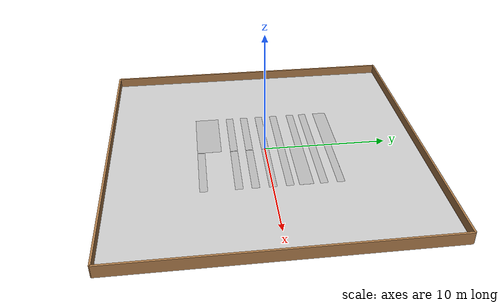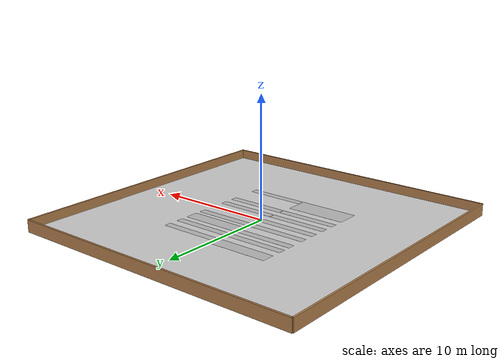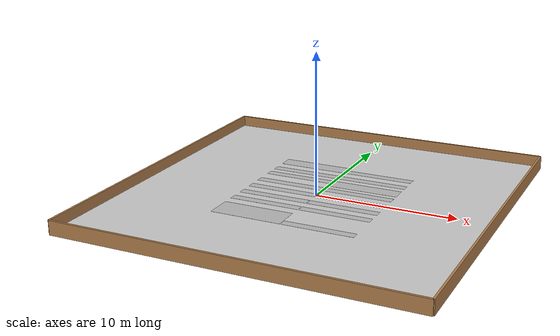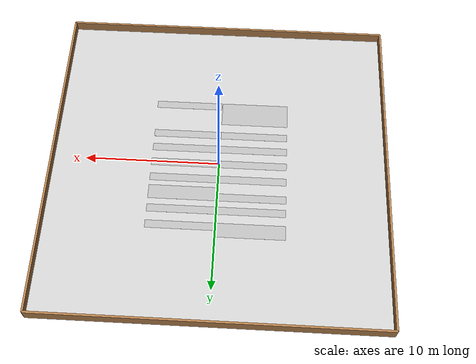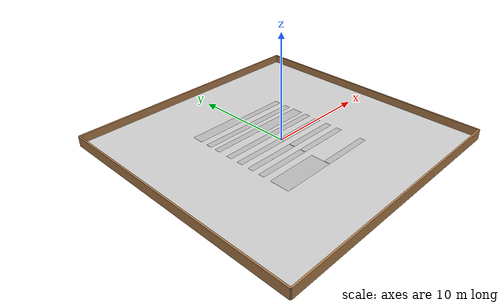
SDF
<sdf version='1.6'>
  <world name='default'>

    <gui fullscreen='0'>
      <camera name='user_camera'>
        <pose frame=''>0.0 0.0 15.7465 0.0 1.57 0.0</pose>
        <view_controller>orbit</view_controller>
        <projection_type>perspective</projection_type>
      </camera>
    </gui>

    <include>
      <uri>model://sun</uri>
    </include>
    <include>
      <uri>model://cmp9767m_ground_3</uri>
    </include>
    <include>
      <uri>model://cmp9767m_enclosure</uri>
    </include>
    <include>
      <uri>model://cmp9767m_crop_2</uri>
      <pose>2.55 0 0 0 0 0</pose>
      <name>row_0a</name>
    </include>
    <include>
      <uri>model://cmp9767m_crop_2</uri>
      <pose>-2.55 0 0 0 0 0</pose>
      <name>row_0b</name>
    </include>
    <include>
      <uri>model://cmp9767m_crop_2</uri>
      <pose>2.55 1.3 0 0 0 3.14159</pose>
      <name>row_1a</name>
    </include>
    <include>
      <uri>model://cmp9767m_crop_2</uri>
      <pose>-2.55 1.3 0 0 0 3.14159</pose>
      <name>row_1b</name>
    </include>
    <include>
      <uri>model://cmp9767m_bend_1</uri>
      <pose>2.55 2.55 0 0 0 0</pose>
      <name>row_2a</name>
    </include>
    <include>
      <uri>model://cmp9767m_crop_2</uri>
      <pose>-2.55 2.80 0 0 0 0</pose>
      <name>row_2b</name>
    </include>
    <include>
      <uri>model://cmp9767m_crop_2</uri>
      <pose>2.55 3.9 0 0 0 3.14159</pose>
      <name>row_3a</name>
    </include>
    <include>
      <uri>model://cmp9767m_crop_2</uri>
      <pose>-2.55 3.9 0 0 0 0</pose>
      <name>row_3b</name>
    </include>
    <include>
      <uri>model://cmp9767m_crop_2</uri>
      <pose>2.55 5.2 0 0 0 0</pose>
      <name>row_4a</name>
    </include>
    <include>
      <uri>model://cmp9767m_bend_1</uri>
      <pose>-2.55 5.45 0 0 0 3.14159</pose>
      <name>row_4b</name>
    </include>
    <include>
      <uri>model://cmp9767m_crop_2</uri>
      <pose>2.55 -1.3 0 0 0 3.14159</pose>
      <name>row_01a</name>
    </include>
    <include>
      <uri>model://cmp9767m_crop_2</uri>
      <pose>-2.55 -1.3 0 0 0 3.14159</pose>
      <name>row_01b</name>
    </include>
    <include>
      <uri>model://cmp9767m_crop_2</uri>
      <pose>2.55 -2.55 0 0 0 0</pose>
      <name>row_02a</name>
    </include>
    <include>
      <uri>model://cmp9767m_crop_2</uri>
      <pose>-2.55 -2.55 0 0 0 0</pose>
      <name>row_02b</name>
    </include>
    <include>
      <uri>model://cmp9767m_crop_2</uri>
      <pose>2.55 -5.2 0 0 0 0</pose>
      <name>row_04a</name>
    </include>
    <include>
      <uri>model://cmp9767m_bend_2</uri>
      <pose>-2.55 -4.53 0 0 0 3.14159</pose>
      <name>row_04b</name>
    </include>
    <include>
      <uri>model://cmp9767m_enclosure</uri>
    </include>
    <physics type="ode">
        <real_time_update_rate>200</real_time_update_rate>
        <real_time_factor>1</real_time_factor>
        <max_step_size>0.005</max_step_size>
    </physics>
    <gravity>0 0 -9.8</gravity>
  </world>
</sdf>

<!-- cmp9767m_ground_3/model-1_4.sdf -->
<sdf version="1.4">
<model name="cmp9767m_ground_3">
  <static>true</static>
    <link name="dirt">
      <collision name="collision">
        <geometry>
          <plane>
            <normal>0 0 1</normal>
            <size>25 25</size>
          </plane>
        </geometry>
        <surface>
          <friction>
            <ode>
              <mu>Inf</mu>
              <mu2>Inf</mu2>
            </ode>
          </friction>
        </surface>
      </collision>
      <visual name="visual">
        <cast_shadows>false</cast_shadows>
        <geometry>
          <plane>
            <normal>0 0 1</normal>
            <size>25 25</size>
          </plane>
        </geometry>
        <material>
          <script>
            <uri>model://cmp9767m_ground_3/materials/scripts</uri>
            <uri>model://cmp9767m_ground_3/materials/textures</uri>
            <name>cmp9767m_ground_3/dirt</name>
          </script>
        </material>
      </visual>
    </link>
  </model>
</sdf>

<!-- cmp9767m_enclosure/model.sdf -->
<sdf version='1.6'>
  <model name='cmp9767m_enclosure'>
    <link name='Wall_0'>
      <pose frame=''>0 12.5 0 0 -0 0</pose>
      <self_collide>0</self_collide>
      <enable_wind>0</enable_wind>
      <kinematic>0</kinematic>
      <gravity>1</gravity>
      <inertial>
        <mass>1</mass>
        <pose frame=''>0 0 0 0 -0 0</pose>
        <inertia>
          <ixx>1</ixx>
          <ixy>0</ixy>
          <ixz>0</ixz>
          <iyy>1</iyy>
          <iyz>0</iyz>
          <izz>1</izz>
        </inertia>
      </inertial>
      <visual name='Wall_0_Visual'>
        <pose frame=''>0 0 0.25 0 -0 0</pose>
        <geometry>
          <box>
            <size>25.0 0.15 1.0</size>
          </box>
        </geometry>
        <material>
          <script>
            <uri>file://media/materials/scripts/gazebo.material</uri>
            <name>Gazebo/Wood</name>
          </script>
          <ambient>1 1 1 1</ambient>
          <shader type='pixel'>
            <normal_map>__default__</normal_map>
          </shader>
          <diffuse>1 1 1 1</diffuse>
          <specular>0.2 0.2 0.2 1</specular>
          <emissive>0 0 0 1</emissive>
        </material>
        <meta>
          <layer>0</layer>
        </meta>
        <transparency>0</transparency>
        <cast_shadows>1</cast_shadows>
      </visual>
      <collision name='Wall_0_Collision'>
        <laser_retro>0</laser_retro>
        <max_contacts>10</max_contacts>
        <pose frame=''>0 0 0.25 0 -0 0</pose>
        <geometry>
          <box>
            <size>25.0 0.15 1.0</size>
          </box>
        </geometry>
        <surface>
          <friction>
            <ode>
              <mu>1</mu>
              <mu2>1</mu2>
              <fdir1>0 0 0</fdir1>
              <slip1>0</slip1>
              <slip2>0</slip2>
            </ode>
            <torsional>
              <coefficient>1</coefficient>
              <patch_radius>0</patch_radius>
              <surface_radius>0</surface_radius>
              <use_patch_radius>1</use_patch_radius>
              <ode>
                <slip>0</slip>
              </ode>
            </torsional>
          </friction>
          <bounce>
            <restitution_coefficient>0</restitution_coefficient>
            <threshold>1e+06</threshold>
          </bounce>
          <contact>
            <collide_without_contact>0</collide_without_contact>
            <collide_without_contact_bitmask>1</collide_without_contact_bitmask>
            <collide_bitmask>1</collide_bitmask>
            <ode>
              <soft_cfm>0</soft_cfm>
              <soft_erp>0.2</soft_erp>
              <kp>1e+13</kp>
              <kd>1</kd>
              <max_vel>0.01</max_vel>
              <min_depth>0</min_depth>
            </ode>
            <bullet>
              <split_impulse>1</split_impulse>
              <split_impulse_penetration_threshold>-0.01</split_impulse_penetration_threshold>
              <soft_cfm>0</soft_cfm>
              <soft_erp>0.2</soft_erp>
              <kp>1e+13</kp>
              <kd>1</kd>
            </bullet>
          </contact>
        </surface>
      </collision>
    </link>
    <link name='Wall_1'>
      <pose frame=''>0 -12.5 0 0 -0 0</pose>
      <self_collide>0</self_collide>
      <enable_wind>0</enable_wind>
      <kinematic>0</kinematic>
      <gravity>1</gravity>
      <inertial>
        <mass>1</mass>
        <pose frame=''>0 0 0 0 -0 0</pose>
        <inertia>
          <ixx>1</ixx>
          <ixy>0</ixy>
          <ixz>0</ixz>
          <iyy>1</iyy>
          <iyz>0</iyz>
          <izz>1</izz>
        </inertia>
      </inertial>
      <visual name='Wall_1_Visual'>
        <pose frame=''>0 0 0.25 0 -0 0</pose>
        <geometry>
          <box>
            <size>25.0 0.15 1.0</size>
          </box>
        </geometry>
        <material>
          <script>
            <uri>file://media/materials/scripts/gazebo.material</uri>
            <name>Gazebo/Wood</name>
          </script>
          <ambient>1 1 1 1</ambient>
          <shader type='pixel'>
            <normal_map>__default__</normal_map>
          </shader>
          <diffuse>1 1 1 1</diffuse>
          <specular>0.2 0.2 0.2 1</specular>
          <emissive>0 0 0 1</emissive>
        </material>
        <meta>
          <layer>0</layer>
        </meta>
        <transparency>0</transparency>
        <cast_shadows>1</cast_shadows>
      </visual>
      <collision name='Wall_1_Collision'>
        <laser_retro>0</laser_retro>
        <max_contacts>10</max_contacts>
        <pose frame=''>0 0 0.25 0 -0 0</pose>
        <geometry>
          <box>
            <size>25.0 0.15 1.0</size>
          </box>
        </geometry>
        <surface>
          <friction>
            <ode>
              <mu>1</mu>
              <mu2>1</mu2>
              <fdir1>0 0 0</fdir1>
              <slip1>0</slip1>
              <slip2>0</slip2>
            </ode>
            <torsional>
              <coefficient>1</coefficient>
              <patch_radius>0</patch_radius>
              <surface_radius>0</surface_radius>
              <use_patch_radius>1</use_patch_radius>
              <ode>
                <slip>0</slip>
              </ode>
            </torsional>
          </friction>
          <bounce>
            <restitution_coefficient>0</restitution_coefficient>
            <threshold>1e+06</threshold>
          </bounce>
          <contact>
            <collide_without_contact>0</collide_without_contact>
            <collide_without_contact_bitmask>1</collide_without_contact_bitmask>
            <collide_bitmask>1</collide_bitmask>
            <ode>
              <soft_cfm>0</soft_cfm>
              <soft_erp>0.2</soft_erp>
              <kp>1e+13</kp>
              <kd>1</kd>
              <max_vel>0.01</max_vel>
              <min_depth>0</min_depth>
            </ode>
            <bullet>
              <split_impulse>1</split_impulse>
              <split_impulse_penetration_threshold>-0.01</split_impulse_penetration_threshold>
              <soft_cfm>0</soft_cfm>
              <soft_erp>0.2</soft_erp>
              <kp>1e+13</kp>
              <kd>1</kd>
            </bullet>
          </contact>
        </surface>
      </collision>
    </link>
    <link name='Wall_2'>
      <pose frame=''>-12.5 0 0 0 -0 1.57</pose>
      <self_collide>0</self_collide>
      <enable_wind>0</enable_wind>
      <kinematic>0</kinematic>
      <gravity>1</gravity>
      <inertial>
        <mass>1</mass>
        <pose frame=''>0 0 0 0 -0 0</pose>
        <inertia>
          <ixx>1</ixx>
          <ixy>0</ixy>
          <ixz>0</ixz>
          <iyy>1</iyy>
          <iyz>0</iyz>
          <izz>1</izz>
        </inertia>
      </inertial>
      <visual name='Wall_2_Visual'>
        <pose frame=''>0 0 0.25 0 -0 0</pose>
        <geometry>
          <box>
            <size>25.0 0.15 1.0</size>
          </box>
        </geometry>
        <material>
          <script>
            <uri>file://media/materials/scripts/gazebo.material</uri>
            <name>Gazebo/Wood</name>
          </script>
          <ambient>1 1 1 1</ambient>
          <shader type='pixel'>
            <normal_map>__default__</normal_map>
          </shader>
          <diffuse>1 1 1 1</diffuse>
          <specular>0.2 0.2 0.2 1</specular>
          <emissive>0 0 0 1</emissive>
        </material>
        <meta>
          <layer>0</layer>
        </meta>
        <transparency>0</transparency>
        <cast_shadows>1</cast_shadows>
      </visual>
      <collision name='Wall_2_Collision'>
        <laser_retro>0</laser_retro>
        <max_contacts>10</max_contacts>
        <pose frame=''>0 0 0.25 0 -0 0</pose>
        <geometry>
          <box>
            <size>25.0 0.15 1.0</size>
          </box>
        </geometry>
        <surface>
          <friction>
            <ode>
              <mu>1</mu>
              <mu2>1</mu2>
              <fdir1>0 0 0</fdir1>
              <slip1>0</slip1>
              <slip2>0</slip2>
            </ode>
            <torsional>
              <coefficient>1</coefficient>
              <patch_radius>0</patch_radius>
              <surface_radius>0</surface_radius>
              <use_patch_radius>1</use_patch_radius>
              <ode>
                <slip>0</slip>
              </ode>
            </torsional>
          </friction>
          <bounce>
            <restitution_coefficient>0</restitution_coefficient>
            <threshold>1e+06</threshold>
          </bounce>
          <contact>
            <collide_without_contact>0</collide_without_contact>
            <collide_without_contact_bitmask>1</collide_without_contact_bitmask>
            <collide_bitmask>1</collide_bitmask>
            <ode>
              <soft_cfm>0</soft_cfm>
              <soft_erp>0.2</soft_erp>
              <kp>1e+13</kp>
              <kd>1</kd>
              <max_vel>0.01</max_vel>
              <min_depth>0</min_depth>
            </ode>
            <bullet>
              <split_impulse>1</split_impulse>
              <split_impulse_penetration_threshold>-0.01</split_impulse_penetration_threshold>
              <soft_cfm>0</soft_cfm>
              <soft_erp>0.2</soft_erp>
              <kp>1e+13</kp>
              <kd>1</kd>
            </bullet>
          </contact>
        </surface>
      </collision>
    </link>
    <link name='Wall_3'>
      <pose frame=''>12.5 0 0 0 -0 1.57</pose>
      <self_collide>0</self_collide>
      <enable_wind>0</enable_wind>
      <kinematic>0</kinematic>
      <gravity>1</gravity>
      <inertial>
        <mass>1</mass>
        <pose frame=''>0 0 0 0 -0 0</pose>
        <inertia>
          <ixx>1</ixx>
          <ixy>0</ixy>
          <ixz>0</ixz>
          <iyy>1</iyy>
          <iyz>0</iyz>
          <izz>1</izz>
        </inertia>
      </inertial>
      <visual name='Wall_3_Visual'>
        <pose frame=''>0 0 0.25 0 -0 0</pose>
        <geometry>
          <box>
            <size>25.0 0.15 1.0</size>
          </box>
        </geometry>
        <material>
          <script>
            <uri>file://media/materials/scripts/gazebo.material</uri>
            <name>Gazebo/Wood</name>
          </script>
          <ambient>1 1 1 1</ambient>
          <shader type='pixel'>
            <normal_map>__default__</normal_map>
          </shader>
          <diffuse>1 1 1 1</diffuse>
          <specular>0.2 0.2 0.2 1</specular>
          <emissive>0 0 0 1</emissive>
        </material>
        <meta>
          <layer>0</layer>
        </meta>
        <transparency>0</transparency>
        <cast_shadows>1</cast_shadows>
      </visual>
      <collision name='Wall_3_Collision'>
        <laser_retro>0</laser_retro>
        <max_contacts>10</max_contacts>
        <pose frame=''>0 0 0.25 0 -0 0</pose>
        <geometry>
          <box>
            <size>25.0 0.15 1.0</size>
          </box>
        </geometry>
        <surface>
          <friction>
            <ode>
              <mu>1</mu>
              <mu2>1</mu2>
              <fdir1>0 0 0</fdir1>
              <slip1>0</slip1>
              <slip2>0</slip2>
            </ode>
            <torsional>
              <coefficient>1</coefficient>
              <patch_radius>0</patch_radius>
              <surface_radius>0</surface_radius>
              <use_patch_radius>1</use_patch_radius>
              <ode>
                <slip>0</slip>
              </ode>
            </torsional>
          </friction>
          <bounce>
            <restitution_coefficient>0</restitution_coefficient>
            <threshold>1e+06</threshold>
          </bounce>
          <contact>
            <collide_without_contact>0</collide_without_contact>
            <collide_without_contact_bitmask>1</collide_without_contact_bitmask>
            <collide_bitmask>1</collide_bitmask>
            <ode>
              <soft_cfm>0</soft_cfm>
              <soft_erp>0.2</soft_erp>
              <kp>1e+13</kp>
              <kd>1</kd>
              <max_vel>0.01</max_vel>
              <min_depth>0</min_depth>
            </ode>
            <bullet>
              <split_impulse>1</split_impulse>
              <split_impulse_penetration_threshold>-0.01</split_impulse_penetration_threshold>
              <soft_cfm>0</soft_cfm>
              <soft_erp>0.2</soft_erp>
              <kp>1e+13</kp>
              <kd>1</kd>
            </bullet>
          </contact>
        </surface>
      </collision>
    </link>
    <static>1</static>
    <allow_auto_disable>1</allow_auto_disable>
  </model>
</sdf>

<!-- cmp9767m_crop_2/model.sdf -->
<sdf version="1.4">
  <model name="cmp9767m_crop_2">
  <static>true</static>
    <link name="realeasy">
      <pose frame=''>0 0 0 0 0 0</pose>
      <collision name="collision">
        <geometry>
          <plane>
            <normal>0 0 1</normal>
            <size>5.04 0.6</size>
          </plane>
        </geometry>
        <surface>
          <friction>
            <ode>
              <mu>100</mu>
              <mu2>50</mu2>
            </ode>
          </friction>
        </surface>
      </collision>
      <visual name="visual">
	     <pose>0 0 0.01 0 0 0</pose>
        <cast_shadows>false</cast_shadows>
        <geometry>
          <plane>
            <normal>0 0 1</normal>
            <size>5.04 0.6</size>
          </plane>
        </geometry>
        <material>
          <script>
            <uri>model://cmp9767m_crop_2/materials/scripts</uri>
            <uri>model://cmp9767m_crop_2/materials/textures</uri>
            <name>cmp9767m_crop_2/realeasy</name>
          </script>
        </material>
      </visual>
    </link>
  </model>
</sdf>

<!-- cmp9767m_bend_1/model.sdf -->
<sdf version="1.4">
  <model name="cmp9767m_bend_1">
  <static>true</static>
    <link name="realhard">
      <pose frame=''>0 0 0 0 0 0</pose>
      <collision name="collision">
        <geometry>
          <plane>
            <normal>0 0 1</normal>
            <size>5.04 1.1</size>
          </plane>
        </geometry>
        <surface>
          <friction>
            <ode>
              <mu>100</mu>
              <mu2>50</mu2>
            </ode>
          </friction>
        </surface>
      </collision>
      <visual name="visual">
	     <pose>0 0 0.01 0 0 0</pose>
        <cast_shadows>false</cast_shadows>
        <geometry>
          <plane>
            <normal>0 0 1</normal>
            <size>5.04 1.1</size>
          </plane>
        </geometry>
        <material>
          <script>
            <uri>model://cmp9767m_bend_1/materials/scripts</uri>
            <uri>model://cmp9767m_bend_1/materials/textures</uri>
            <name>cmp9767m_bend_1/realeasy_bend_1</name>
          </script>
        </material>
      </visual>
    </link>

  </model>
</sdf>

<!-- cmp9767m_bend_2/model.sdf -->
<sdf version="1.4">
  <model name="cmp9767m_bend_2">
  <static>true</static>
    <link name="realhard">
      <pose frame=''>0 0 0 0 0 0</pose>
      <collision name="collision">
        <geometry>
          <plane>
            <normal>0 0 1</normal>
            <size>5.04 1.94</size>
          </plane>
        </geometry>
        <surface>
          <friction>
            <ode>
              <mu>100</mu>
              <mu2>50</mu2>
            </ode>
          </friction>
        </surface>
      </collision>
      <visual name="visual">
	     <pose>0 0 0.01 0 0 0</pose>
        <cast_shadows>false</cast_shadows>
        <geometry>
          <plane>
            <normal>0 0 1</normal>
            <size>5.04 1.94</size>
          </plane>
        </geometry>
        <material>
          <script>
            <uri>model://cmp9767m_bend_2/materials/scripts</uri>
            <uri>model://cmp9767m_bend_2/materials/textures</uri>
            <name>cmp9767m_bend_2/realeasy_bend_2</name>
          </script>
        </material>
      </visual>
    </link>

  </model>
</sdf>
